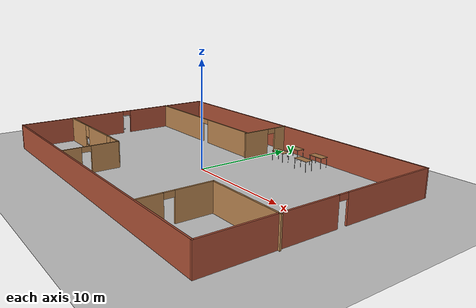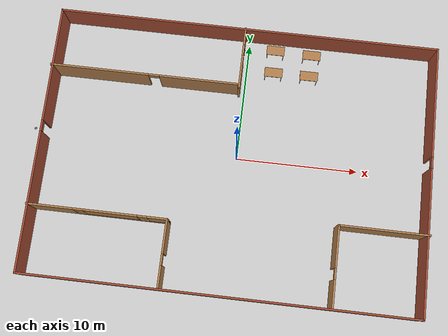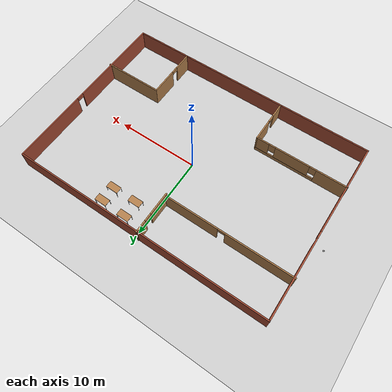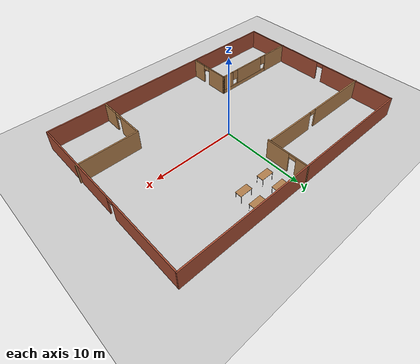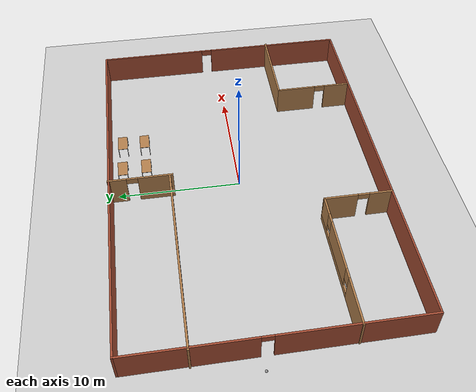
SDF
<sdf version="1.6">
 <world name="default">
  <light name="sun" type="directional">
   <pose>0 0 10 0 -0 0</pose>
   <diffuse>0.8 0.8 0.8 1</diffuse>
   <specular>0.2 0.2 0.2 1</specular>
   <attenuation>
    <range>1000</range>
    <constant>0.9</constant>
    <linear>0.01</linear>
    <quadratic>0.001</quadratic>
   </attenuation>
   <direction>-0.5 0.1 -0.9</direction>
  </light>
  <model name="ground_plane">
   <static>1</static>
   <link name="link">
    <collision name="collision">
     <geometry><plane><normal>0 0 1</normal><size>100 100</size></plane></geometry>
     <surface>
      <contact><collide_bitmask>65535</collide_bitmask></contact>
      <friction><ode><mu>100</mu><mu2>50</mu2></ode></friction>
     </surface>
    </collision>
    <visual name="visual">
     <cast_shadows>0</cast_shadows>
     <geometry><plane><normal>0 0 1</normal><size>100 100</size></plane></geometry>
     <material>
      <script><uri>file://media/materials/scripts/gazebo.material</uri><name>Gazebo/Grey</name></script>
     </material>
    </visual>
   </link>
  </model>
  <gravity>0 0 -9.8</gravity>
  <magnetic_field>6e-06 2.3e-05 -4.2e-05</magnetic_field>
  <atmosphere type="adiabatic"/>
  <physics name="default_physics" default="0" type="ode">
   <max_step_size>0.001</max_step_size>
   <real_time_factor>1</real_time_factor>
   <real_time_update_rate>1000</real_time_update_rate>
  </physics>
  <scene><ambient>0.4 0.4 0.4 1</ambient><background>0.7 0.7 0.7 1</background><shadows>1</shadows></scene>
  <spherical_coordinates>
   <surface_model>EARTH_WGS84</surface_model>
   <latitude_deg>0</latitude_deg>
   <longitude_deg>0</longitude_deg>
   <elevation>0</elevation>
   <heading_deg>0</heading_deg>
  </spherical_coordinates>
  <model name="Robot_Environment">
   <pose>-0.1508 -0.381017 0 0 -0 0</pose>
   <link name="Wall_10">
    <pose>15.6555 -0.029143 0 0 -0 1.5708</pose>
    <visual name="Wall_10_Visual_0">
     <pose>-5.05285 0 1.25 0 -0 0</pose>
     <geometry><box><size>11.8943 0.15 2.5</size></box></geometry>
     <material>
      <script><uri>file://media/materials/scripts/gazebo.material</uri><name>Gazebo/Bricks</name></script>
      <ambient>1 1 1 1</ambient>
     </material>
     <meta><layer>0</layer></meta>
    </visual>
    <collision name="Wall_10_Collision_0">
     <geometry><box><size>11.8943 0.15 2.5</size></box></geometry>
     <pose>-5.05285 0 1.25 0 -0 0</pose>
    </collision>
    <visual name="Wall_10_Visual_1">
     <pose>6.39715 0 1.25 0 -0 0</pose>
     <geometry><box><size>9.20569 0.15 2.5</size></box></geometry>
     <material>
      <script><uri>file://media/materials/scripts/gazebo.material</uri><name>Gazebo/Bricks</name></script>
      <ambient>1 1 1 1</ambient>
     </material>
     <meta><layer>0</layer></meta>
    </visual>
    <collision name="Wall_10_Collision_1">
     <geometry><box><size>9.20569 0.15 2.5</size></box></geometry>
     <pose>6.39715 0 1.25 0 -0 0</pose>
    </collision>
    <visual name="Wall_10_Visual_2">
     <pose>1.34431 0 2.25 0 -0 0</pose>
     <geometry><box><size>0.9 0.15 0.5</size></box></geometry>
     <material>
      <script><uri>file://media/materials/scripts/gazebo.material</uri><name>Gazebo/Bricks</name></script>
      <ambient>1 1 1 1</ambient>
     </material>
     <meta><layer>0</layer></meta>
    </visual>
    <collision name="Wall_10_Collision_2">
     <geometry><box><size>0.9 0.15 0.5</size></box></geometry>
     <pose>1.34431 0 2.25 0 -0 0</pose>
    </collision>
   </link>
   <link name="Wall_11">
    <collision name="Wall_11_Collision">
     <geometry><box><size>31.5 0.15 2.5</size></box></geometry>
     <pose>0 0 1.25 0 -0 0</pose>
    </collision>
    <visual name="Wall_11_Visual">
     <pose>0 0 1.25 0 -0 0</pose>
     <geometry><box><size>31.5 0.15 2.5</size></box></geometry>
     <material>
      <script><uri>file://media/materials/scripts/gazebo.material</uri><name>Gazebo/Bricks</name></script>
      <ambient>1 1 1 1</ambient>
     </material>
     <meta><layer>0</layer></meta>
    </visual>
    <pose>-0.019531 10.8959 0 0 -0 3.14159</pose>
   </link>
   <link name="Wall_13">
    <pose>-10.2057 -5.56169 0 0 -0 0</pose>
    <visual name="Wall_13_Visual_0">
     <pose>-3.75304 0 1.25 0 -0 0</pose>
     <geometry><box><size>3.74392 0.15 2.5</size></box></geometry>
     <material>
      <script><uri>file://media/materials/scripts/gazebo.material</uri><name>Gazebo/Wood</name></script>
      <ambient>0.996078 0.47451 0.0196078 1</ambient>
     </material>
     <meta><layer>0</layer></meta>
    </visual>
    <collision name="Wall_13_Collision_0">
     <geometry><box><size>3.74392 0.15 2.5</size></box></geometry>
     <pose>-3.75304 0 1.25 0 -0 0</pose>
    </collision>
    <visual name="Wall_13_Visual_1">
     <pose>1.87196 0 0.25 0 -0 0</pose>
     <geometry><box><size>7.50608 0.15 0.5</size></box></geometry>
     <material>
      <script><uri>file://media/materials/scripts/gazebo.material</uri><name>Gazebo/Wood</name></script>
      <ambient>0.996078 0.47451 0.0196078 1</ambient>
     </material>
     <meta><layer>0</layer></meta>
    </visual>
    <collision name="Wall_13_Collision_1">
     <geometry><box><size>7.50608 0.15 0.5</size></box></geometry>
     <pose>1.87196 0 0.25 0 -0 0</pose>
    </collision>
    <visual name="Wall_13_Visual_2">
     <pose>1.05179 0 1.5 0 -0 0</pose>
     <geometry><box><size>4.26574 0.15 2</size></box></geometry>
     <material>
      <script><uri>file://media/materials/scripts/gazebo.material</uri><name>Gazebo/Wood</name></script>
      <ambient>0.996078 0.47451 0.0196078 1</ambient>
     </material>
     <meta><layer>0</layer></meta>
    </visual>
    <collision name="Wall_13_Collision_2">
     <geometry><box><size>4.26574 0.15 2</size></box></geometry>
     <pose>1.05179 0 1.5 0 -0 0</pose>
    </collision>
    <visual name="Wall_13_Visual_3">
     <pose>4.80483 0 1.5 0 -0 0</pose>
     <geometry><box><size>1.64034 0.15 2</size></box></geometry>
     <material>
      <script><uri>file://media/materials/scripts/gazebo.material</uri><name>Gazebo/Wood</name></script>
      <ambient>0.996078 0.47451 0.0196078 1</ambient>
     </material>
     <meta><layer>0</layer></meta>
    </visual>
    <collision name="Wall_13_Collision_3">
     <geometry><box><size>1.64034 0.15 2</size></box></geometry>
     <pose>4.80483 0 1.5 0 -0 0</pose>
    </collision>
    <visual name="Wall_13_Visual_4">
     <pose>-1.48108 0 1.9 0 -0 0</pose>
     <geometry><box><size>0.8 0.15 1.2</size></box></geometry>
     <material>
      <script><uri>file://media/materials/scripts/gazebo.material</uri><name>Gazebo/Wood</name></script>
      <ambient>0.996078 0.47451 0.0196078 1</ambient>
     </material>
     <meta><layer>0</layer></meta>
    </visual>
    <collision name="Wall_13_Collision_4">
     <geometry><box><size>0.8 0.15 1.2</size></box></geometry>
     <pose>-1.48108 0 1.9 0 -0 0</pose>
    </collision>
    <visual name="Wall_13_Visual_5">
     <pose>3.58466 0 1.9 0 -0 0</pose>
     <geometry><box><size>0.8 0.15 1.2</size></box></geometry>
     <material>
      <script><uri>file://media/materials/scripts/gazebo.material</uri><name>Gazebo/Wood</name></script>
      <ambient>0.996078 0.47451 0.0196078 1</ambient>
     </material>
     <meta><layer>0</layer></meta>
    </visual>
    <collision name="Wall_13_Collision_5">
     <geometry><box><size>0.8 0.15 1.2</size></box></geometry>
     <pose>3.58466 0 1.9 0 -0 0</pose>
    </collision>
   </link>
   <link name="Wall_14">
    <pose>-4.65571 -8.23669 0 0 0 -1.5708</pose>
    <visual name="Wall_14_Visual_0">
     <pose>-1.38054 0 1.25 0 -0 0</pose>
     <geometry><box><size>2.73892 0.15 2.5</size></box></geometry>
     <material>
      <script><uri>file://media/materials/scripts/gazebo.material</uri><name>Gazebo/Wood</name></script>
      <ambient>0.996078 0.47451 0.0196078 1</ambient>
     </material>
     <meta><layer>0</layer></meta>
    </visual>
    <collision name="Wall_14_Collision_0">
     <geometry><box><size>2.73892 0.15 2.5</size></box></geometry>
     <pose>-1.38054 0 1.25 0 -0 0</pose>
    </collision>
    <visual name="Wall_14_Visual_1">
     <pose>1.81946 0 1.25 0 -0 0</pose>
     <geometry><box><size>1.86108 0.15 2.5</size></box></geometry>
     <material>
      <script><uri>file://media/materials/scripts/gazebo.material</uri><name>Gazebo/Wood</name></script>
      <ambient>0.996078 0.47451 0.0196078 1</ambient>
     </material>
     <meta><layer>0</layer></meta>
    </visual>
    <collision name="Wall_14_Collision_1">
     <geometry><box><size>1.86108 0.15 2.5</size></box></geometry>
     <pose>1.81946 0 1.25 0 -0 0</pose>
    </collision>
    <visual name="Wall_14_Visual_2">
     <pose>0.438919 0 2.25 0 -0 0</pose>
     <geometry><box><size>0.9 0.15 0.5</size></box></geometry>
     <material>
      <script><uri>file://media/materials/scripts/gazebo.material</uri><name>Gazebo/Wood</name></script>
      <ambient>0.996078 0.47451 0.0196078 1</ambient>
     </material>
     <meta><layer>0</layer></meta>
    </visual>
    <collision name="Wall_14_Collision_2">
     <geometry><box><size>0.9 0.15 0.5</size></box></geometry>
     <pose>0.438919 0 2.25 0 -0 0</pose>
    </collision>
   </link>
   <link name="Wall_16">
    <pose>-8.14189 6.0626 0 0 -0 0</pose>
    <visual name="Wall_16_Visual_0">
     <pose>-3.69137 0 1.25 0 -0 0</pose>
     <geometry><box><size>8.11727 0.15 2.5</size></box></geometry>
     <material>
      <script><uri>file://media/materials/scripts/gazebo.material</uri><name>Gazebo/Wood</name></script>
      <ambient>0.921569 0.807843 0.615686 1</ambient>
     </material>
     <meta><layer>0</layer></meta>
    </visual>
    <collision name="Wall_16_Collision_0">
     <geometry><box><size>8.11727 0.15 2.5</size></box></geometry>
     <pose>-3.69137 0 1.25 0 -0 0</pose>
    </collision>
    <visual name="Wall_16_Visual_1">
     <pose>4.50863 0 1.25 0 -0 0</pose>
     <geometry><box><size>6.48273 0.15 2.5</size></box></geometry>
     <material>
      <script><uri>file://media/materials/scripts/gazebo.material</uri><name>Gazebo/Wood</name></script>
      <ambient>0.921569 0.807843 0.615686 1</ambient>
     </material>
     <meta><layer>0</layer></meta>
    </visual>
    <collision name="Wall_16_Collision_1">
     <geometry><box><size>6.48273 0.15 2.5</size></box></geometry>
     <pose>4.50863 0 1.25 0 -0 0</pose>
    </collision>
    <visual name="Wall_16_Visual_2">
     <pose>0.817267 0 2.25 0 -0 0</pose>
     <geometry><box><size>0.9 0.15 0.5</size></box></geometry>
     <material>
      <script><uri>file://media/materials/scripts/gazebo.material</uri><name>Gazebo/Wood</name></script>
      <ambient>0.921569 0.807843 0.615686 1</ambient>
     </material>
     <meta><layer>0</layer></meta>
    </visual>
    <collision name="Wall_16_Collision_2">
     <geometry><box><size>0.9 0.15 0.5</size></box></geometry>
     <pose>0.817267 0 2.25 0 -0 0</pose>
    </collision>
   </link>
   <link name="Wall_18">
    <pose>-0.288871 8.40414 0 0 0 -1.5708</pose>
    <visual name="Wall_18_Visual_0">
     <pose>-1.86267 0 1.25 0 -0 0</pose>
     <geometry><box><size>1.52465 0.15 2.5</size></box></geometry>
     <material>
      <script><uri>file://media/materials/scripts/gazebo.material</uri><name>Gazebo/Wood</name></script>
      <ambient>0.921569 0.807843 0.615686 1</ambient>
     </material>
     <meta><layer>0</layer></meta>
    </visual>
    <collision name="Wall_18_Collision_0">
     <geometry><box><size>1.52465 0.15 2.5</size></box></geometry>
     <pose>-1.86267 0 1.25 0 -0 0</pose>
    </collision>
    <visual name="Wall_18_Visual_1">
     <pose>1.21233 0 1.25 0 -0 0</pose>
     <geometry><box><size>2.82535 0.15 2.5</size></box></geometry>
     <material>
      <script><uri>file://media/materials/scripts/gazebo.material</uri><name>Gazebo/Wood</name></script>
      <ambient>0.921569 0.807843 0.615686 1</ambient>
     </material>
     <meta><layer>0</layer></meta>
    </visual>
    <collision name="Wall_18_Collision_1">
     <geometry><box><size>2.82535 0.15 2.5</size></box></geometry>
     <pose>1.21233 0 1.25 0 -0 0</pose>
    </collision>
    <visual name="Wall_18_Visual_2">
     <pose>-0.650347 0 2.25 0 -0 0</pose>
     <geometry><box><size>0.9 0.15 0.5</size></box></geometry>
     <material>
      <script><uri>file://media/materials/scripts/gazebo.material</uri><name>Gazebo/Wood</name></script>
      <ambient>0.921569 0.807843 0.615686 1</ambient>
     </material>
     <meta><layer>0</layer></meta>
    </visual>
    <collision name="Wall_18_Collision_2">
     <geometry><box><size>0.9 0.15 0.5</size></box></geometry>
     <pose>-0.650347 0 2.25 0 -0 0</pose>
    </collision>
   </link>
   <link name="Wall_20">
    <pose>8.71689 -7.68169 0 0 -0 1.5708</pose>
    <visual name="Wall_20_Visual_0">
     <pose>-2.13589 0 1.25 0 -0 0</pose>
     <geometry><box><size>2.22823 0.15 2.5</size></box></geometry>
     <material>
      <script><uri>file://media/materials/scripts/gazebo.material</uri><name>Gazebo/Wood</name></script>
      <ambient>0.435294 0.796078 0.67451 1</ambient>
     </material>
     <meta><layer>0</layer></meta>
    </visual>
    <collision name="Wall_20_Collision_0">
     <geometry><box><size>2.22823 0.15 2.5</size></box></geometry>
     <pose>-2.13589 0 1.25 0 -0 0</pose>
    </collision>
    <visual name="Wall_20_Visual_1">
     <pose>1.56411 0 1.25 0 -0 0</pose>
     <geometry><box><size>3.37177 0.15 2.5</size></box></geometry>
     <material>
      <script><uri>file://media/materials/scripts/gazebo.material</uri><name>Gazebo/Wood</name></script>
      <ambient>0.435294 0.796078 0.67451 1</ambient>
     </material>
     <meta><layer>0</layer></meta>
    </visual>
    <collision name="Wall_20_Collision_1">
     <geometry><box><size>3.37177 0.15 2.5</size></box></geometry>
     <pose>1.56411 0 1.25 0 -0 0</pose>
    </collision>
    <visual name="Wall_20_Visual_2">
     <pose>-0.571772 0 2.25 0 -0 0</pose>
     <geometry><box><size>0.9 0.15 0.5</size></box></geometry>
     <material>
      <script><uri>file://media/materials/scripts/gazebo.material</uri><name>Gazebo/Wood</name></script>
      <ambient>0.435294 0.796078 0.67451 1</ambient>
     </material>
     <meta><layer>0</layer></meta>
    </visual>
    <collision name="Wall_20_Collision_2">
     <geometry><box><size>0.9 0.15 0.5</size></box></geometry>
     <pose>-0.571772 0 2.25 0 -0 0</pose>
    </collision>
   </link>
   <link name="Wall_21">
    <collision name="Wall_21_Collision">
     <geometry><box><size>7.25 0.15 2.5</size></box></geometry>
     <pose>0 0 1.25 0 -0 0</pose>
    </collision>
    <visual name="Wall_21_Visual">
     <pose>0 0 1.25 0 -0 0</pose>
     <geometry><box><size>7.25 0.15 2.5</size></box></geometry>
     <material>
      <script><uri>file://media/materials/scripts/gazebo.material</uri><name>Gazebo/Wood</name></script>
      <ambient>0.435294 0.796078 0.67451 1</ambient>
     </material>
     <meta><layer>0</layer></meta>
    </visual>
    <pose>12.2669 -4.50669 0 0 -0 0</pose>
   </link>
   <link name="Wall_8">
    <pose>-15.6945 -0.029143 0 0 0 -1.5708</pose>
    <visual name="Wall_8_Visual_0">
     <pose>-6.1509 0 1.25 0 -0 0</pose>
     <geometry><box><size>9.6982 0.15 2.5</size></box></geometry>
     <material>
      <script><uri>file://media/materials/scripts/gazebo.material</uri><name>Gazebo/Bricks</name></script>
      <ambient>1 1 1 1</ambient>
     </material>
     <meta><layer>0</layer></meta>
    </visual>
    <collision name="Wall_8_Collision_0">
     <geometry><box><size>9.6982 0.15 2.5</size></box></geometry>
     <pose>-6.1509 0 1.25 0 -0 0</pose>
    </collision>
    <visual name="Wall_8_Visual_1">
     <pose>5.2991 0 1.25 0 -0 0</pose>
     <geometry><box><size>11.4018 0.15 2.5</size></box></geometry>
     <material>
      <script><uri>file://media/materials/scripts/gazebo.material</uri><name>Gazebo/Bricks</name></script>
      <ambient>1 1 1 1</ambient>
     </material>
     <meta><layer>0</layer></meta>
    </visual>
    <collision name="Wall_8_Collision_1">
     <geometry><box><size>11.4018 0.15 2.5</size></box></geometry>
     <pose>5.2991 0 1.25 0 -0 0</pose>
    </collision>
    <visual name="Wall_8_Visual_2">
     <pose>-0.851804 0 2.25 0 -0 0</pose>
     <geometry><box><size>0.9 0.15 0.5</size></box></geometry>
     <material>
      <script><uri>file://media/materials/scripts/gazebo.material</uri><name>Gazebo/Bricks</name></script>
      <ambient>1 1 1 1</ambient>
     </material>
     <meta><layer>0</layer></meta>
    </visual>
    <collision name="Wall_8_Collision_2">
     <geometry><box><size>0.9 0.15 0.5</size></box></geometry>
     <pose>-0.851804 0 2.25 0 -0 0</pose>
    </collision>
   </link>
   <link name="Wall_9">
    <collision name="Wall_9_Collision">
     <geometry><box><size>31.5 0.15 2.5</size></box></geometry>
     <pose>0 0 1.25 0 -0 0</pose>
    </collision>
    <visual name="Wall_9_Visual">
     <pose>0 0 1.25 0 -0 0</pose>
     <geometry><box><size>31.5 0.15 2.5</size></box></geometry>
     <material>
      <script><uri>file://media/materials/scripts/gazebo.material</uri><name>Gazebo/Bricks</name></script>
      <ambient>1 1 1 1</ambient>
     </material>
     <meta><layer>0</layer></meta>
    </visual>
    <pose>-0.019531 -10.9541 0 0 -0 0</pose>
   </link>
   <static>1</static>
  </model>
  <model name="table">
   <static>1</static>
   <link name="link">
    <collision name="surface">
     <pose>0 0 1 0 -0 0</pose>
     <geometry><box><size>1.5 0.8 0.03</size></box></geometry>
     <surface><friction><ode><mu>0.6</mu><mu2>0.6</mu2></ode></friction></surface>
    </collision>
    <visual name="visual1">
     <pose>0 0 1 0 -0 0</pose>
     <geometry><box><size>1.5 0.8 0.03</size></box></geometry>
     <material>
      <script><uri>file://media/materials/scripts/gazebo.material</uri><name>Gazebo/Wood</name></script>
     </material>
    </visual>
    <collision name="front_left_leg">
     <pose>0.68 0.38 0.5 0 -0 0</pose>
     <geometry><cylinder><radius>0.02</radius><length>1</length></cylinder></geometry>
    </collision>
    <visual name="front_left_leg">
     <pose>0.68 0.38 0.5 0 -0 0</pose>
     <geometry><cylinder><radius>0.02</radius><length>1</length></cylinder></geometry>
     <material>
      <script><uri>file://media/materials/scripts/gazebo.material</uri><name>Gazebo/Grey</name></script>
     </material>
    </visual>
    <collision name="front_right_leg">
     <pose>0.68 -0.38 0.5 0 -0 0</pose>
     <geometry><cylinder><radius>0.02</radius><length>1</length></cylinder></geometry>
    </collision>
    <visual name="front_right_leg">
     <pose>0.68 -0.38 0.5 0 -0 0</pose>
     <geometry><cylinder><radius>0.02</radius><length>1</length></cylinder></geometry>
     <material>
      <script><uri>file://media/materials/scripts/gazebo.material</uri><name>Gazebo/Grey</name></script>
     </material>
    </visual>
    <collision name="back_right_leg">
     <pose>-0.68 -0.38 0.5 0 -0 0</pose>
     <geometry><cylinder><radius>0.02</radius><length>1</length></cylinder></geometry>
    </collision>
    <visual name="back_right_leg">
     <pose>-0.68 -0.38 0.5 0 -0 0</pose>
     <geometry><cylinder><radius>0.02</radius><length>1</length></cylinder></geometry>
     <material>
      <script><uri>file://media/materials/scripts/gazebo.material</uri><name>Gazebo/Grey</name></script>
     </material>
    </visual>
    <collision name="back_left_leg">
     <pose>-0.68 0.38 0.5 0 -0 0</pose>
     <geometry><cylinder><radius>0.02</radius><length>1</length></cylinder></geometry>
    </collision>
    <visual name="back_left_leg">
     <pose>-0.68 0.38 0.5 0 -0 0</pose>
     <geometry><cylinder><radius>0.02</radius><length>1</length></cylinder></geometry>
     <material>
      <script><uri>file://media/materials/scripts/gazebo.material</uri><name>Gazebo/Grey</name></script>
     </material>
    </visual>
   </link>
   <pose>2.25934 7.55379 0 0 -0 0</pose>
  </model>
  <model name="table_0">
   <static>1</static>
   <link name="link">
    <collision name="surface">
     <pose>0 0 1 0 -0 0</pose>
     <geometry><box><size>1.5 0.8 0.03</size></box></geometry>
     <surface><friction><ode><mu>0.6</mu><mu2>0.6</mu2></ode></friction></surface>
    </collision>
    <visual name="visual1">
     <pose>0 0 1 0 -0 0</pose>
     <geometry><box><size>1.5 0.8 0.03</size></box></geometry>
     <material>
      <script><uri>file://media/materials/scripts/gazebo.material</uri><name>Gazebo/Wood</name></script>
     </material>
    </visual>
    <collision name="front_left_leg">
     <pose>0.68 0.38 0.5 0 -0 0</pose>
     <geometry><cylinder><radius>0.02</radius><length>1</length></cylinder></geometry>
    </collision>
    <visual name="front_left_leg">
     <pose>0.68 0.38 0.5 0 -0 0</pose>
     <geometry><cylinder><radius>0.02</radius><length>1</length></cylinder></geometry>
     <material>
      <script><uri>file://media/materials/scripts/gazebo.material</uri><name>Gazebo/Grey</name></script>
     </material>
    </visual>
    <collision name="front_right_leg">
     <pose>0.68 -0.38 0.5 0 -0 0</pose>
     <geometry><cylinder><radius>0.02</radius><length>1</length></cylinder></geometry>
    </collision>
    <visual name="front_right_leg">
     <pose>0.68 -0.38 0.5 0 -0 0</pose>
     <geometry><cylinder><radius>0.02</radius><length>1</length></cylinder></geometry>
     <material>
      <script><uri>file://media/materials/scripts/gazebo.material</uri><name>Gazebo/Grey</name></script>
     </material>
    </visual>
    <collision name="back_right_leg">
     <pose>-0.68 -0.38 0.5 0 -0 0</pose>
     <geometry><cylinder><radius>0.02</radius><length>1</length></cylinder></geometry>
    </collision>
    <visual name="back_right_leg">
     <pose>-0.68 -0.38 0.5 0 -0 0</pose>
     <geometry><cylinder><radius>0.02</radius><length>1</length></cylinder></geometry>
     <material>
      <script><uri>file://media/materials/scripts/gazebo.material</uri><name>Gazebo/Grey</name></script>
     </material>
    </visual>
    <collision name="back_left_leg">
     <pose>-0.68 0.38 0.5 0 -0 0</pose>
     <geometry><cylinder><radius>0.02</radius><length>1</length></cylinder></geometry>
    </collision>
    <visual name="back_left_leg">
     <pose>-0.68 0.38 0.5 0 -0 0</pose>
     <geometry><cylinder><radius>0.02</radius><length>1</length></cylinder></geometry>
     <material>
      <script><uri>file://media/materials/scripts/gazebo.material</uri><name>Gazebo/Grey</name></script>
     </material>
    </visual>
   </link>
   <pose>5.24643 7.56006 0 0 -0 0</pose>
  </model>
  <model name="table_1">
   <static>1</static>
   <link name="link">
    <collision name="surface">
     <pose>0 0 1 0 -0 0</pose>
     <geometry><box><size>1.5 0.8 0.03</size></box></geometry>
     <surface><friction><ode><mu>0.6</mu><mu2>0.6</mu2></ode></friction></surface>
    </collision>
    <visual name="visual1">
     <pose>0 0 1 0 -0 0</pose>
     <geometry><box><size>1.5 0.8 0.03</size></box></geometry>
     <material>
      <script><uri>file://media/materials/scripts/gazebo.material</uri><name>Gazebo/Wood</name></script>
     </material>
    </visual>
    <collision name="front_left_leg">
     <pose>0.68 0.38 0.5 0 -0 0</pose>
     <geometry><cylinder><radius>0.02</radius><length>1</length></cylinder></geometry>
    </collision>
    <visual name="front_left_leg">
     <pose>0.68 0.38 0.5 0 -0 0</pose>
     <geometry><cylinder><radius>0.02</radius><length>1</length></cylinder></geometry>
     <material>
      <script><uri>file://media/materials/scripts/gazebo.material</uri><name>Gazebo/Grey</name></script>
     </material>
    </visual>
    <collision name="front_right_leg">
     <pose>0.68 -0.38 0.5 0 -0 0</pose>
     <geometry><cylinder><radius>0.02</radius><length>1</length></cylinder></geometry>
    </collision>
    <visual name="front_right_leg">
     <pose>0.68 -0.38 0.5 0 -0 0</pose>
     <geometry><cylinder><radius>0.02</radius><length>1</length></cylinder></geometry>
     <material>
      <script><uri>file://media/materials/scripts/gazebo.material</uri><name>Gazebo/Grey</name></script>
     </material>
    </visual>
    <collision name="back_right_leg">
     <pose>-0.68 -0.38 0.5 0 -0 0</pose>
     <geometry><cylinder><radius>0.02</radius><length>1</length></cylinder></geometry>
    </collision>
    <visual name="back_right_leg">
     <pose>-0.68 -0.38 0.5 0 -0 0</pose>
     <geometry><cylinder><radius>0.02</radius><length>1</length></cylinder></geometry>
     <material>
      <script><uri>file://media/materials/scripts/gazebo.material</uri><name>Gazebo/Grey</name></script>
     </material>
    </visual>
    <collision name="back_left_leg">
     <pose>-0.68 0.38 0.5 0 -0 0</pose>
     <geometry><cylinder><radius>0.02</radius><length>1</length></cylinder></geometry>
    </collision>
    <visual name="back_left_leg">
     <pose>-0.68 0.38 0.5 0 -0 0</pose>
     <geometry><cylinder><radius>0.02</radius><length>1</length></cylinder></geometry>
     <material>
      <script><uri>file://media/materials/scripts/gazebo.material</uri><name>Gazebo/Grey</name></script>
     </material>
    </visual>
   </link>
   <pose>5.31098 9.42211 0 0 -0 0</pose>
  </model>
  <model name="table_2">
   <static>1</static>
   <link name="link">
    <collision name="surface">
     <pose>0 0 1 0 -0 0</pose>
     <geometry><box><size>1.5 0.8 0.03</size></box></geometry>
     <surface><friction><ode><mu>0.6</mu><mu2>0.6</mu2></ode></friction></surface>
    </collision>
    <visual name="visual1">
     <pose>0 0 1 0 -0 0</pose>
     <geometry><box><size>1.5 0.8 0.03</size></box></geometry>
     <material>
      <script><uri>file://media/materials/scripts/gazebo.material</uri><name>Gazebo/Wood</name></script>
     </material>
    </visual>
    <collision name="front_left_leg">
     <pose>0.68 0.38 0.5 0 -0 0</pose>
     <geometry><cylinder><radius>0.02</radius><length>1</length></cylinder></geometry>
    </collision>
    <visual name="front_left_leg">
     <pose>0.68 0.38 0.5 0 -0 0</pose>
     <geometry><cylinder><radius>0.02</radius><length>1</length></cylinder></geometry>
     <material>
      <script><uri>file://media/materials/scripts/gazebo.material</uri><name>Gazebo/Grey</name></script>
     </material>
    </visual>
    <collision name="front_right_leg">
     <pose>0.68 -0.38 0.5 0 -0 0</pose>
     <geometry><cylinder><radius>0.02</radius><length>1</length></cylinder></geometry>
    </collision>
    <visual name="front_right_leg">
     <pose>0.68 -0.38 0.5 0 -0 0</pose>
     <geometry><cylinder><radius>0.02</radius><length>1</length></cylinder></geometry>
     <material>
      <script><uri>file://media/materials/scripts/gazebo.material</uri><name>Gazebo/Grey</name></script>
     </material>
    </visual>
    <collision name="back_right_leg">
     <pose>-0.68 -0.38 0.5 0 -0 0</pose>
     <geometry><cylinder><radius>0.02</radius><length>1</length></cylinder></geometry>
    </collision>
    <visual name="back_right_leg">
     <pose>-0.68 -0.38 0.5 0 -0 0</pose>
     <geometry><cylinder><radius>0.02</radius><length>1</length></cylinder></geometry>
     <material>
      <script><uri>file://media/materials/scripts/gazebo.material</uri><name>Gazebo/Grey</name></script>
     </material>
    </visual>
    <collision name="back_left_leg">
     <pose>-0.68 0.38 0.5 0 -0 0</pose>
     <geometry><cylinder><radius>0.02</radius><length>1</length></cylinder></geometry>
    </collision>
    <visual name="back_left_leg">
     <pose>-0.68 0.38 0.5 0 -0 0</pose>
     <geometry><cylinder><radius>0.02</radius><length>1</length></cylinder></geometry>
     <material>
      <script><uri>file://media/materials/scripts/gazebo.material</uri><name>Gazebo/Grey</name></script>
     </material>
    </visual>
   </link>
   <pose>2.24714 9.50768 0 0 -0 0</pose>
  </model>
  <model name="my_ball">
   <link name="link_0">
    <inertial>
     <mass>1</mass>
     <inertia><ixx>0.1</ixx><ixy>0</ixy><ixz>0</ixz><iyy>0.1</iyy><iyz>0</iyz><izz>0.1</izz></inertia>
    </inertial>
    <visual name="visual">
     <geometry><sphere><radius>0.1</radius></sphere></geometry>
     <material>
      <lighting>1</lighting>
      <script><uri>file://media/materials/scripts/gazebo.material</uri><name>Gazebo/Grey</name></script>
      <shader type="pixel"><normal_map>__default__</normal_map></shader>
      <ambient>1 1 1 1</ambient>
      <diffuse>1 1 1 1</diffuse>
      <specular>1 1 1 1</specular>
      <emissive>1 1 1 1</emissive>
     </material>
    </visual>
    <collision name="collision">
     <geometry><sphere><radius>0.1</radius></sphere></geometry>
     <surface>
      <friction>
       <ode><mu>1</mu><mu2>1</mu2><fdir1>0 0 0</fdir1><slip1>0</slip1><slip2>0</slip2></ode>
       <torsional>
        <coefficient>1</coefficient>
        <patch_radius>0</patch_radius>
        <surface_radius>0</surface_radius>
        <use_patch_radius>1</use_patch_radius>
        <ode><slip>0</slip></ode>
       </torsional>
      </friction>
      <bounce><restitution_coefficient>0</restitution_coefficient><threshold>1e+06</threshold></bounce>
      <contact>
       <collide_without_contact>0</collide_without_contact>
       <collide_without_contact_bitmask>1</collide_without_contact_bitmask>
       <collide_bitmask>1</collide_bitmask>
       <ode>
        <soft_cfm>0</soft_cfm>
        <soft_erp>0.2</soft_erp>
        <kp>1e+13</kp>
        <kd>1</kd>
        <max_vel>0.01</max_vel>
        <min_depth>0</min_depth>
       </ode>
       <bullet>
        <split_impulse>1</split_impulse>
        <split_impulse_penetration_threshold>-0.01</split_impulse_penetration_threshold>
        <soft_cfm>0</soft_cfm>
        <soft_erp>0.2</soft_erp>
        <kp>1e+13</kp>
        <kd>1</kd>
       </bullet>
      </contact>
     </surface>
    </collision>
   </link>
   <static>0</static>
   <pose>-17.0448 0.711421 0.1 0 -0 0</pose>
  </model>
 </world>
</sdf>
